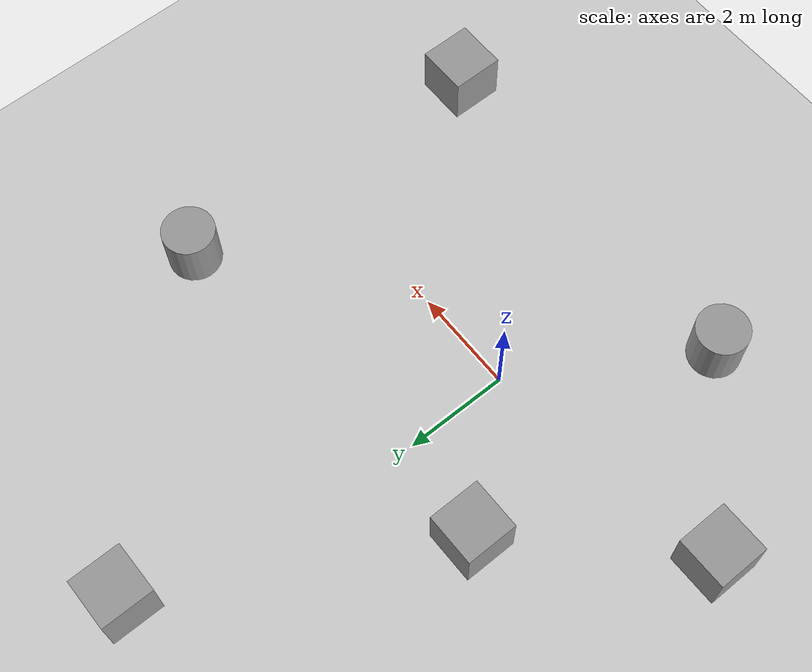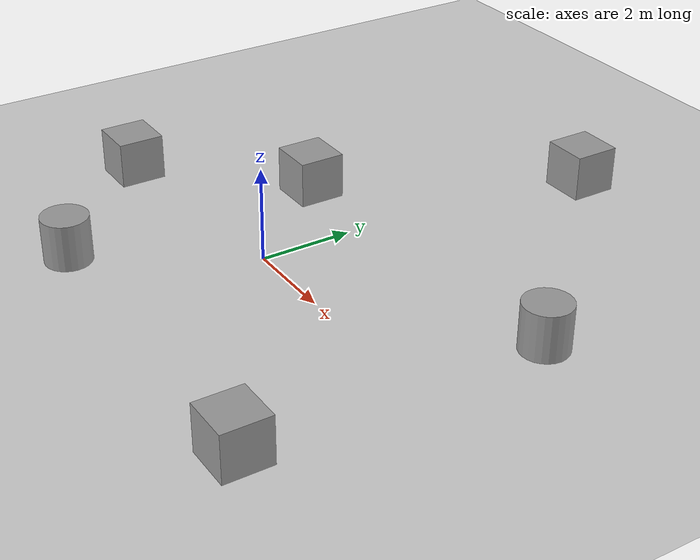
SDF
<sdf version="1.7">
 <world name="default">
  <light name="sun" type="directional">
   <pose>0 0 10 0 -0 0</pose>
   <diffuse>0.8 0.8 0.8 1</diffuse>
   <specular>0.2 0.2 0.2 1</specular>
   <attenuation>
    <range>1000</range>
    <constant>0.9</constant>
    <linear>0.01</linear>
    <quadratic>0.001</quadratic>
   </attenuation>
   <direction>-0.5 0.1 -0.9</direction>
   <spot><inner_angle>0</inner_angle><outer_angle>0</outer_angle><falloff>0</falloff></spot>
  </light>
  <model name="ground_plane">
   <static>1</static>
   <link name="link">
    <collision name="collision">
     <geometry><plane><normal>0 0 1</normal><size>100 100</size></plane></geometry>
     <surface>
      <contact><collide_bitmask>65535</collide_bitmask></contact>
      <friction><ode><mu>100</mu><mu2>50</mu2></ode></friction>
     </surface>
    </collision>
    <visual name="visual">
     <cast_shadows>0</cast_shadows>
     <geometry><plane><normal>0 0 1</normal><size>100 100</size></plane></geometry>
     <material>
      <script><uri>file://media/materials/scripts/gazebo.material</uri><name>Gazebo/Grey</name></script>
     </material>
    </visual>
   </link>
  </model>
  <gravity>0 0 -9.8</gravity>
  <magnetic_field>6e-06 2.3e-05 -4.2e-05</magnetic_field>
  <atmosphere type="adiabatic"/>
  <physics type="ode">
   <max_step_size>0.001</max_step_size>
   <real_time_factor>1</real_time_factor>
   <real_time_update_rate>1000</real_time_update_rate>
  </physics>
  <scene><ambient>0.4 0.4 0.4 1</ambient><background>0.7 0.7 0.7 1</background><shadows>1</shadows></scene>
  <audio><device>default</device></audio>
  <spherical_coordinates>
   <surface_model>EARTH_WGS84</surface_model>
   <latitude_deg>0</latitude_deg>
   <longitude_deg>0</longitude_deg>
   <elevation>0</elevation>
   <heading_deg>0</heading_deg>
  </spherical_coordinates>
  <model name="unit_box">
   <pose>-1.94712 2.28106 0.499995 -1e-05 -0 -0</pose>
   <link name="link">
    <inertial>
     <mass>1</mass>
     <inertia>
      <ixx>0.166667</ixx>
      <ixy>0</ixy>
      <ixz>0</ixz>
      <iyy>0.166667</iyy>
      <iyz>0</iyz>
      <izz>0.166667</izz>
     </inertia>
    </inertial>
    <collision name="collision"><geometry><box><size>1 1 1</size></box></geometry></collision>
    <visual name="visual">
     <geometry><box><size>1 1 1</size></box></geometry>
     <material>
      <script><name>Gazebo/Grey</name><uri>file://media/materials/scripts/gazebo.material</uri></script>
     </material>
    </visual>
   </link>
  </model>
  <model name="unit_cylinder">
   <pose>-2.04406 -3.34142 0.499992 -3e-06 -4e-06 -0</pose>
   <link name="link">
    <inertial>
     <mass>1</mass>
     <inertia><ixx>0.145833</ixx><ixy>0</ixy><ixz>0</ixz><iyy>0.145833</iyy><iyz>0</iyz><izz>0.125</izz></inertia>
    </inertial>
    <collision name="collision">
     <geometry><cylinder><radius>0.5</radius><length>1</length></cylinder></geometry>
    </collision>
    <visual name="visual">
     <geometry><cylinder><radius>0.5</radius><length>1</length></cylinder></geometry>
     <material>
      <script><name>Gazebo/Grey</name><uri>file://media/materials/scripts/gazebo.material</uri></script>
     </material>
    </visual>
   </link>
  </model>
  <model name="unit_cylinder_0">
   <pose>5.49248 2.7599 0.499993 -3e-06 -3e-06 0</pose>
   <link name="link">
    <inertial>
     <mass>1</mass>
     <inertia><ixx>0.145833</ixx><ixy>0</ixy><ixz>0</ixz><iyy>0.145833</iyy><iyz>0</iyz><izz>0.125</izz></inertia>
    </inertial>
    <collision name="collision">
     <geometry><cylinder><radius>0.5</radius><length>1</length></cylinder></geometry>
    </collision>
    <visual name="visual">
     <geometry><cylinder><radius>0.5</radius><length>1</length></cylinder></geometry>
     <material>
      <script><name>Gazebo/Grey</name><uri>file://media/materials/scripts/gazebo.material</uri></script>
     </material>
    </visual>
   </link>
  </model>
  <model name="unit_box_0">
   <pose>5.30305 -3.51402 0.499995 0 1e-05 0</pose>
   <link name="link">
    <inertial>
     <mass>1</mass>
     <inertia>
      <ixx>0.166667</ixx>
      <ixy>0</ixy>
      <ixz>0</ixz>
      <iyy>0.166667</iyy>
      <iyz>0</iyz>
      <izz>0.166667</izz>
     </inertia>
    </inertial>
    <collision name="collision"><geometry><box><size>1 1 1</size></box></geometry></collision>
    <visual name="visual">
     <geometry><box><size>1 1 1</size></box></geometry>
     <material>
      <script><name>Gazebo/Grey</name><uri>file://media/materials/scripts/gazebo.material</uri></script>
     </material>
    </visual>
   </link>
  </model>
  <model name="unit_box_1">
   <pose>0.910717 7.46504 0.499995 -1e-05 -0 0</pose>
   <link name="link">
    <inertial>
     <mass>1</mass>
     <inertia>
      <ixx>0.166667</ixx>
      <ixy>0</ixy>
      <ixz>0</ixz>
      <iyy>0.166667</iyy>
      <iyz>0</iyz>
      <izz>0.166667</izz>
     </inertia>
    </inertial>
    <collision name="collision"><geometry><box><size>1 1 1</size></box></geometry></collision>
    <visual name="visual">
     <geometry><box><size>1 1 1</size></box></geometry>
     <material>
      <script><name>Gazebo/Grey</name><uri>file://media/materials/scripts/gazebo.material</uri></script>
     </material>
    </visual>
   </link>
  </model>
  <model name="unit_box_2">
   <pose>-4.81691 -0.6103 0.5 0 -0 0</pose>
   <link name="link">
    <inertial>
     <mass>1</mass>
     <inertia>
      <ixx>0.166667</ixx>
      <ixy>0</ixy>
      <ixz>0</ixz>
      <iyy>0.166667</iyy>
      <iyz>0</iyz>
      <izz>0.166667</izz>
     </inertia>
    </inertial>
    <collision name="collision"><geometry><box><size>1 1 1</size></box></geometry></collision>
    <visual name="visual">
     <geometry><box><size>1 1 1</size></box></geometry>
     <material>
      <script><name>Gazebo/Grey</name><uri>file://media/materials/scripts/gazebo.material</uri></script>
     </material>
    </visual>
   </link>
  </model>
 </world>
</sdf>
